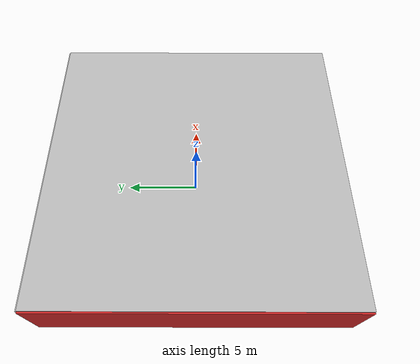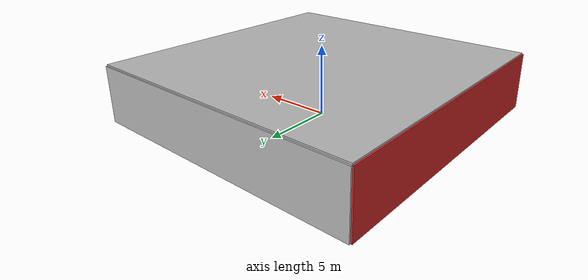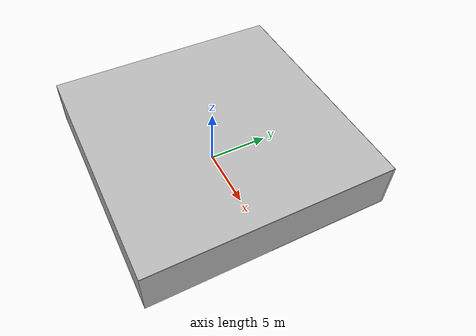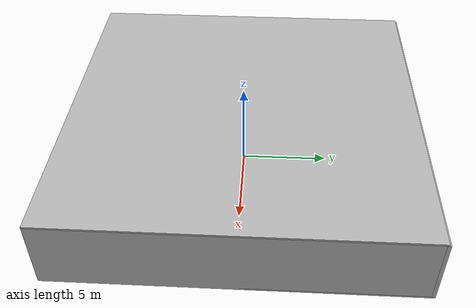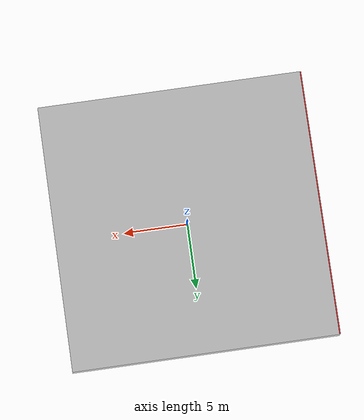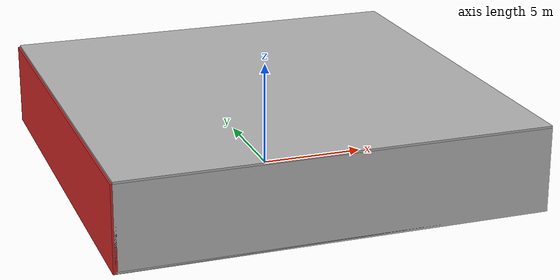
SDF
<sdf version="1.4">
 <world name="default">
  <physics type="ode">
   <max_step_size>0.001</max_step_size>
   <real_time_factor>1</real_time_factor>
   <real_time_update_rate>1000</real_time_update_rate>
   <gravity>0 0 -9.8</gravity>
  </physics>
  <scene><ambient>0.4 0.4 0.4 1</ambient><background>0.7 0.7 0.7 1</background><shadows>1</shadows></scene>
  <model name="Surrounding">
   <static>1</static>
   <link name="Ceiling">
    <collision name="Ceiling_Collision"><geometry><box><size>20 20 0.1</size></box></geometry></collision>
    <visual name="Ceiling_Visual">
     <geometry><box><size>20 20 0.1</size></box></geometry>
     <material>
      <script><uri>file://media/materials/scripts/gazebo.material</uri><name>Gazebo/Pioneer2Body</name></script>
     </material>
    </visual>
    <pose>0 0 4.05 0 0 0</pose>
   </link>
   <link name="Wall_South">
    <collision name="Wall_South_Collision">
     <geometry><box><size>20 0 4</size></box></geometry>
     <pose>0 0 2 0 -0 0</pose>
    </collision>
    <visual name="Wall_South_Visual">
     <pose>0 0 2 0 -0 0</pose>
     <geometry><box><size>20 0 4</size></box></geometry>
     <material>
      <script><uri>file://media/materials/scripts/gazebo.material</uri><name>Gazebo/Pioneer2Body</name></script>
     </material>
    </visual>
    <velocity_decay><linear>0</linear><angular>0</angular></velocity_decay>
    <pose>0 -10 0 0 -0 0</pose>
   </link>
   <link name="Wall_East">
    <collision name="Wall_21_Collision">
     <geometry><box><size>20 0 4</size></box></geometry>
     <pose>0 0 2 0 -0 0</pose>
    </collision>
    <visual name="Wall_21_Visual">
     <pose>0 0 2 0 -0 0</pose>
     <geometry><box><size>20 0 4</size></box></geometry>
     <material>
      <script><uri>file://media/materials/scripts/gazebo.material</uri><name>Gazebo/PioneerBody</name></script>
     </material>
    </visual>
    <velocity_decay><linear>0</linear><angular>0</angular></velocity_decay>
    <pose>10 0 0 0 -0 1.5708</pose>
   </link>
   <link name="Wall_North">
    <collision name="Wall_22_Collision">
     <geometry><box><size>20 0.2 4</size></box></geometry>
     <pose>0 0 2 0 -0 0</pose>
    </collision>
    <visual name="Wall_22_Visual">
     <pose>0 0 2 0 -0 0</pose>
     <geometry><box><size>20 0.2 4</size></box></geometry>
     <material>
      <script><uri>file://media/materials/scripts/gazebo.material</uri><name>Gazebo/JointAnchor</name></script>
     </material>
    </visual>
    <velocity_decay><linear>0</linear><angular>0</angular></velocity_decay>
    <pose>0 10 0 0 -0 0</pose>
   </link>
   <link name="Wall_West">
    <collision name="Wall_23_Collision">
     <geometry><box><size>20 0.2 4</size></box></geometry>
     <pose>0 0 2 0 -0 0</pose>
    </collision>
    <visual name="Wall_23_Visual">
     <pose>0 0 2 0 -0 0</pose>
     <geometry><box><size>20 0.2 4</size></box></geometry>
     <material>
      <script><uri>file://media/materials/scripts/gazebo.material</uri><name>Gazebo/Red</name></script>
     </material>
    </visual>
    <velocity_decay><linear>0</linear><angular>0</angular></velocity_decay>
    <pose>-10 0 0 0 0 -1.5708</pose>
   </link>
   <link name="Ground_link">
    <collision name="collision">
     <pose>0 0 .05 0 -0 0</pose>
     <geometry><box><size>20 20 0.1</size></box></geometry>
    </collision>
    <visual name="visual">
     <pose>0 0 .05 0 -0 0</pose>
     <geometry><box><size>20 20 0.1</size></box></geometry>
     <material>
      <script><uri>file://media/materials/scripts/gazebo.material</uri><name>Gazebo/Pioneer2Body</name></script>
     </material>
    </visual>
   </link>
   <static>1</static>
  </model>
  <spherical_coordinates>
   <surface_model>EARTH_WGS84</surface_model>
   <latitude_deg>0</latitude_deg>
   <longitude_deg>0</longitude_deg>
   <elevation>0</elevation>
   <heading_deg>0</heading_deg>
  </spherical_coordinates>
  <light name="lightball_0" type="diffuse">
   <diffuse>0.8 0.8 0.8 1</diffuse>
   <specular>0.2 0.2 0.2 1</specular>
   <attenuation>
    <range>100</range>
    <constant>0.7</constant>
    <linear>0.01</linear>
    <quadratic>0.001</quadratic>
   </attenuation>
   <direction>-0.5 0.1 -0.9</direction>
   <pose>9.36203356053 -5.27970479532 0.718442521541 0 0 0</pose>
  </light>
  <light name="lightball_1" type="diffuse">
   <diffuse>0.8 0.8 0.8 1</diffuse>
   <specular>0.2 0.2 0.2 1</specular>
   <attenuation>
    <range>100</range>
    <constant>0.7</constant>
    <linear>0.01</linear>
    <quadratic>0.001</quadratic>
   </attenuation>
   <direction>-0.5 0.1 -0.9</direction>
   <pose>-0.599394116031 -0.0766383695889 3.47773960682 0 0 0</pose>
  </light>
  <light name="lightball_2" type="diffuse">
   <diffuse>0.8 0.8 0.8 1</diffuse>
   <specular>0.2 0.2 0.2 1</specular>
   <attenuation>
    <range>100</range>
    <constant>0.7</constant>
    <linear>0.01</linear>
    <quadratic>0.001</quadratic>
   </attenuation>
   <direction>-0.5 0.1 -0.9</direction>
   <pose>0.672879946192 -4.23885190247 1.17782237958 0 0 0</pose>
  </light>
  <light name="lightball_3" type="diffuse">
   <diffuse>0.8 0.8 0.8 1</diffuse>
   <specular>0.2 0.2 0.2 1</specular>
   <attenuation>
    <range>100</range>
    <constant>0.7</constant>
    <linear>0.01</linear>
    <quadratic>0.001</quadratic>
   </attenuation>
   <direction>-0.5 0.1 -0.9</direction>
   <pose>6.1735405677 -1.04334105933 3.50387047035 0 0 0</pose>
  </light>
  <include><uri>model://table</uri><pose>-8.06304378173 -8.66579836344 0 0 0 2.08895264341</pose></include>
  <include>
   <uri>model://textured_shapes</uri>
   <pose>-4.14288153959 -3.7038307805 0 0 0 2.75235056081</pose>
  </include>
  <include><uri>model://cabinet</uri><pose>-2.45007288209 -3.55992965442 0 0 0 2.80669421328</pose></include>
 </world>
</sdf>

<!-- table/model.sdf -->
<sdf version="1.5">
  <model name="table">
    <static>true</static>
    <link name="link">
      <collision name="surface">
        <pose>0 0 1.0 0 0 0</pose>
        <geometry>
          <box>
            <size>1.5 0.8 0.03</size>
          </box>
        </geometry>
        <surface>
          <friction>
            <ode>
              <mu>0.6</mu>
              <mu2>0.6</mu2>
            </ode>
          </friction>
        </surface>
      </collision>
      <visual name="visual1">
        <pose>0 0 1.0 0 0 0</pose>
        <geometry>
          <box>
            <size>1.5 0.8 0.03</size>
          </box>
        </geometry>
        <material>
          <script>
            <uri>model://media/materials/scripts/gazebo.material</uri>
            <name>Gazebo/Wood</name>
          </script>
        </material>
      </visual>
      <collision name="front_left_leg">
        <pose>0.68 0.38 0.5 0 0 0</pose>
        <geometry>
          <cylinder>
            <radius>0.02</radius>
            <length>1.0</length>
          </cylinder>
        </geometry>
      </collision>
      <visual name="front_left_leg">
        <pose>0.68 0.38 0.5 0 0 0</pose>
        <geometry>
          <cylinder>
            <radius>0.02</radius>
            <length>1.0</length>
          </cylinder>
        </geometry>
        <material>
          <script>
            <uri>model://media/materials/scripts/gazebo.material</uri>
            <name>Gazebo/Grey</name>
          </script>
        </material>
      </visual>
      <collision name="front_right_leg">
        <pose>0.68 -0.38 0.5 0 0 0</pose>
        <geometry>
          <cylinder>
            <radius>0.02</radius>
            <length>1.0</length>
          </cylinder>
        </geometry>
      </collision>
      <visual name="front_right_leg">
        <pose>0.68 -0.38 0.5 0 0 0</pose>
        <geometry>
          <cylinder>
            <radius>0.02</radius>
            <length>1.0</length>
          </cylinder>
        </geometry>
        <material>
          <script>
            <uri>model://media/materials/scripts/gazebo.material</uri>
            <name>Gazebo/Grey</name>
          </script>
        </material>
      </visual>
      <collision name="back_right_leg">
        <pose>-0.68 -0.38 0.5 0 0 0</pose>
        <geometry>
          <cylinder>
            <radius>0.02</radius>
            <length>1.0</length>
          </cylinder>
        </geometry>
      </collision>
      <visual name="back_right_leg">
        <pose>-0.68 -0.38 0.5 0 0 0</pose>
        <geometry>
          <cylinder>
            <radius>0.02</radius>
            <length>1.0</length>
          </cylinder>
        </geometry>
        <material>
          <script>
            <uri>model://media/materials/scripts/gazebo.material</uri>
            <name>Gazebo/Grey</name>
          </script>
        </material>
      </visual>
      <collision name="back_left_leg">
        <pose>-0.68 0.38 0.5 0 0 0</pose>
        <geometry>
          <cylinder>
            <radius>0.02</radius>
            <length>1.0</length>
          </cylinder>
        </geometry>
      </collision>
      <visual name="back_left_leg">
        <pose>-0.68 0.38 0.5 0 0 0</pose>
        <geometry>
          <cylinder>
            <radius>0.02</radius>
            <length>1.0</length>
          </cylinder>
        </geometry>
        <material>
          <script>
            <uri>model://media/materials/scripts/gazebo.material</uri>
            <name>Gazebo/Grey</name>
          </script>
        </material>
      </visual>
    </link>
  </model>
</sdf>

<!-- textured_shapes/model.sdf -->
<sdf version="1.6">
  <model name="textured_shapes">
    <pose>0 0 0.5 0 0 0</pose>
    <link name="box">
      <pose>0 -1.5 0 0 0 0</pose>
      <collision name="collision">
        <geometry>
          <box>
            <size>1 1 1</size>
          </box>
        </geometry>
      </collision>
      <visual name="visual">
        <geometry>
          <box>
            <size>1 1 1</size>
          </box>
        </geometry>
        <material>
          <script>
            <uri>model://../model_source/models/textured_shapes/materials/scripts</uri>
            <uri>model://../model_source/models/textured_shapes/materials/textures</uri>
            <name>TexturedShape/Squares</name>
          </script>
        </material>
      </visual>
    </link>
    <link name="sphere">
      <collision name="collision">
        <geometry>
          <sphere>
            <radius>0.5</radius>
          </sphere>
        </geometry>
      </collision>
      <visual name="visual">
        <geometry>
          <sphere>
            <radius>0.5</radius>
          </sphere>
        </geometry>
        <material>
          <script>
            <uri>model://../model_source/models/textured_shapes/materials/scripts</uri>
            <uri>model://../model_source/models/textured_shapes/materials/textures</uri>
            <name>TexturedShape/Squares</name>
          </script>
        </material>
      </visual>
    </link>
    <link name="cylinder">
      <pose>0 1.5 0 0 0 0</pose>
      <collision name="collision">
        <geometry>
          <cylinder>
            <radius>0.5</radius>
            <length>1</length>
          </cylinder>
        </geometry>
      </collision>
      <visual name="visual">
        <geometry>
          <cylinder>
            <radius>0.5</radius>
            <length>1</length>
          </cylinder>
        </geometry>
        <material>
          <script>
            <uri>model://../model_source/models/textured_shapes/materials/scripts</uri>
            <uri>model://../model_source/models/textured_shapes/materials/textures</uri>
            <name>TexturedShape/Squares</name>
          </script>
        </material>
      </visual>
    </link>
  </model>
</sdf>

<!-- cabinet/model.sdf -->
<sdf version="1.5">
  <model name="cabinet">
    <static>true</static>
    <link name="cabinet_bottom_plate">
      <inertial>
        <pose>0 0 -1 0 0 0</pose>
        <inertia>
          <ixx>2.050000</ixx>
          <ixy>0</ixy>
          <ixz>0</ixz>
          <iyy>2.050000</iyy>
          <iyz>0</iyz>
          <izz>2.050000</izz>
        </inertia>
        <mass>25.000000</mass>
      </inertial>
      <collision name="cabinet_bottom_plate_geom">
        <pose>0 0 0.010000 0 0 0</pose>
        <geometry>
          <box>
            <size>0.450000 0.450000 0.020000</size>
          </box>
        </geometry>
      </collision>
      <visual name="cabinet_bottom_plate_geom_visual">
        <pose>0 0 0.010000 0 0 0</pose>
        <geometry>
          <box>
            <size>0.450000 0.450000 0.020000</size>
          </box>
        </geometry>
        <material>
          <script>
            <uri>model://media/materials/scripts/gazebo.material</uri>
            <name>Gazebo/Wood</name>
          </script>
        </material>
      </visual>
      <collision name="cabinet_bottom_plate_geom_cabinet_back_plate">
        <pose>0.235000 0 0.510000 0 0 0</pose>
        <geometry>
          <box>
            <size>0.020000 0.450000 1.020000</size>
          </box>
        </geometry>
      </collision>
      <visual name="cabinet_bottom_plate_geom_cabinet_back_plate_visual">
        <pose>0.235000 0 0.510000 0 0 0</pose>
        <geometry>
          <box>
            <size>0.020000 0.450000 1.020000</size>
          </box>
        </geometry>
        <material>
          <script>
            <uri>model://media/materials/scripts/gazebo.material</uri>
            <name>Gazebo/Wood</name>
          </script>
        </material>
      </visual>
      <collision name="cabinet_bottom_plate_geom_cabinet_left_plate">
        <pose>0 0.235000 0.510000 0 0 0</pose>
        <geometry>
          <box>
            <size>0.450000 0.020000 1.020000</size>
          </box>
        </geometry>
      </collision>
      <visual name="cabinet_bottom_plate_geom_cabinet_left_plate_visual">
        <pose>0 0.235000 0.510000 0 0 0</pose>
        <geometry>
          <box>
            <size>0.450000 0.020000 1.020000</size>
          </box>
        </geometry>
        <material>
          <script>
            <uri>model://media/materials/scripts/gazebo.material</uri>
            <name>Gazebo/Wood</name>
          </script>
        </material>
      </visual>
      <collision name="cabinet_bottom_plate_geom_cabinet_middle_plate">
        <pose>0 0 0.510000 0 0 0</pose>
        <geometry>
          <box>
            <size>0.450000 0.450000 0.020000</size>
          </box>
        </geometry>
      </collision>
      <visual name="cabinet_bottom_plate_geom_cabinet_middle_plate_visual">
        <pose>0 0 0.510000 0 0 0</pose>
        <geometry>
          <box>
            <size>0.450000 0.450000 0.020000</size>
          </box>
        </geometry>
        <material>
          <script>
            <uri>model://media/materials/scripts/gazebo.material</uri>
            <name>Gazebo/Wood</name>
          </script>
        </material>
      </visual>
      <collision name="cabinet_bottom_plate_geom_cabinet_right_plate">
        <pose>0 -0.235000 0.510000 0 0 0</pose>
        <geometry>
          <box>
            <size>0.450000 0.020000 1.020000</size>
          </box>
        </geometry>
      </collision>
      <visual name="cabinet_bottom_plate_geom_cabinet_right_plate_visual">
        <pose>0 -0.235000 0.510000 0 0 0</pose>
        <geometry>
          <box>
            <size>0.450000 0.020000 1.020000</size>
          </box>
        </geometry>
        <material>
          <script>
            <uri>model://media/materials/scripts/gazebo.material</uri>
            <name>Gazebo/Wood</name>
          </script>
        </material>
      </visual>
      <collision name="cabinet_bottom_plate_geom_cabinet_top_plate">
        <pose>0 0 1.010000 0 0 0</pose>
        <geometry>
          <box>
            <size>0.450000 0.450000 0.020000</size>
          </box>
        </geometry>
      </collision>
      <visual name="cabinet_bottom_plate_geom_cabinet_top_plate_visual">
        <pose>0 0 1.010000 0 0 0</pose>
        <geometry>
          <box>
            <size>0.450000 0.450000 0.020000</size>
          </box>
        </geometry>
        <material>
          <script>
            <uri>model://media/materials/scripts/gazebo.material</uri>
            <name>Gazebo/Wood</name>
          </script>
        </material>
      </visual>
    </link>
  </model>
</sdf>
